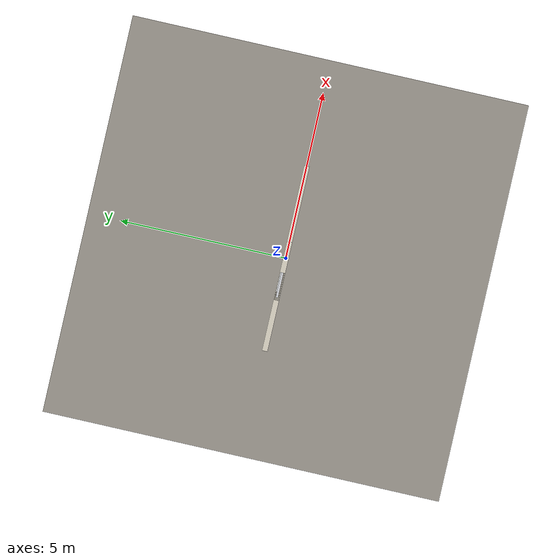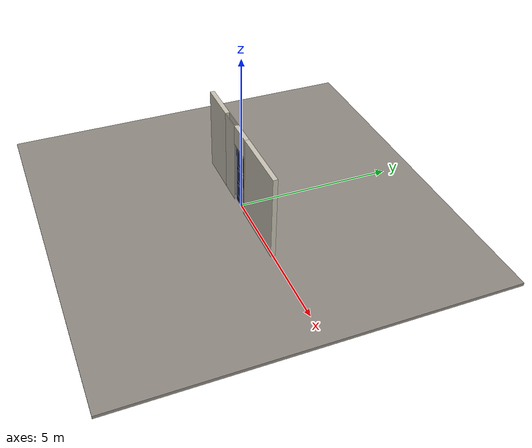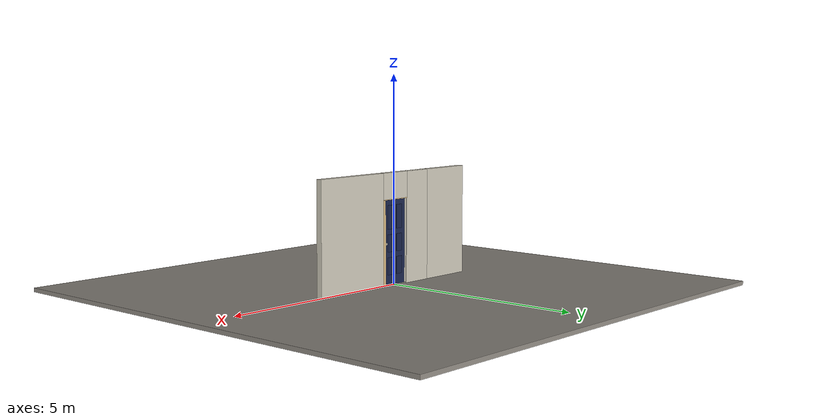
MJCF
<?xml version="1.0" ?>
<mujoco model="db0099_sliding_single_simple">
  <compiler angle="radian" meshdir="../../hardware" texturedir="../../textures" autolimits="true" inertiafromgeom="false"/>
  <option timestep="0.002" integrator="implicitfast" cone="elliptic" impratio="10" noslip_iterations="3">
    <flag multiccd="enable"/>
  </option>
  <size memory="16M"/>
  <default>
    <geom condim="4" solref="0.005 1" solimp="0.95 0.99 0.001"/>
    <joint solreflimit="0.005 1" solimplimit="0.95 0.99 0.001"/>
    <tendon solreflimit="0.005 1"/>
    <equality solref="0.002 1"/>
  </default>
  <visual>
    <headlight ambient="0.4 0.4 0.4" diffuse="0.7 0.7 0.7" specular="0.2 0.2 0.2"/>
    <quality shadowsize="4096"/>
    <map znear="0.01" zfar="60"/>
  </visual>
  <asset>
    <material name="mat_floor" rgba="0.55 0.53 0.5 1" specular="0.2" shininess="0.15" reflectance="0"/>
    <material name="mat_wall" rgba="0.78 0.76 0.7 1" specular="0.2" shininess="0.1" reflectance="0"/>
    <material name="mat_frame" rgba="0.82 0.7 0.5 1" specular="0.2" shininess="0.45" reflectance="0"/>
    <material name="mat_track" rgba="0.8 0.81 0.83 1" specular="0.8" shininess="0.6" reflectance="0.4"/>
    <material name="mat_leaf" rgba="0.09 0.13 0.28 1" specular="0.2" shininess="0.62" reflectance="0"/>
    <material name="mat_leaf_panel" rgba="0.083 0.12 0.258 1" specular="0.2" shininess="0.62" reflectance="0"/>
    <material name="mat_roller" rgba="0.65 0.66 0.68 1" specular="0.74" shininess="0.5" reflectance="0.36"/>
    <material name="mat_op_nickel_satin" rgba="0.72 0.7 0.66 1" specular="0.8" shininess="0.65" reflectance="0.4"/>
    <material name="mat_hook" rgba="0.75 0.76 0.77 1" specular="0.8" shininess="0.65" reflectance="0.4"/>
    <texture name="skybox" type="skybox" builtin="gradient" rgb1="0.6 0.7 0.85" rgb2="0.9 0.92 0.95" width="256" height="256"/>
  </asset>
  <worldbody>
    <light name="sun" pos="1.5 -2.5 4" dir="-0.3 0.5 -0.8" directional="true" diffuse="0.8 0.8 0.8" specular="0.3 0.3 0.3" castshadow="true"/>
    <light name="fill" pos="-1.5 2.5 3" dir="0.3 -0.5 -0.7" directional="true" diffuse="0.35 0.35 0.4" castshadow="false"/>
    <camera name="robot_view" pos="0 -2.54875 1.73965" xyaxes="1 0 0 0 0.26963 0.962964" fovy="52"/>
    <camera name="far_view" pos="0 2.54875 1.73965" xyaxes="-1 0 0 0 -0.26963 0.962964" fovy="52"/>
    <camera name="iso" pos="1.93705 -2.14095 2.14745" xyaxes="0.741536 0.670913 0 -0.242917 0.268487 0.932151" fovy="46"/>
    <camera name="detail_handle" pos="0.4455 -0.8175 1.28" xyaxes="0.97561 0.219512 0 -0.070934 0.315262 0.94635" fovy="38"/>
    <geom name="floor" type="box" size="6 6 0.05" pos="0 0 -0.05" material="mat_floor" group="0" contype="1" conaffinity="1" friction="0.8 0.005 0.0001" density="2400"/>
    <geom name="wall_right" type="box" size="1.02775 0.0725 1.35" pos="1.47225 0 1.35" material="mat_wall" group="0" contype="1" conaffinity="1" friction="0.6 0.005 0.0001" density="800"/>
    <geom name="wall_header" type="box" size="0.4145 0.0725 0.3145" pos="0.03 0 2.3855" material="mat_wall" group="0" contype="1" conaffinity="1" friction="0.6 0.005 0.0001" density="800"/>
    <geom name="pocket_skin_n" type="box" size="0.3805 0.008 1.35" pos="-0.746 -0.0645 1.35" material="mat_wall" group="0" contype="1" conaffinity="1" friction="0.6 0.005 0.0001" density="800"/>
    <geom name="pocket_skin_p" type="box" size="0.3805 0.008 1.35" pos="-0.746 0.0645 1.35" material="mat_wall" group="0" contype="1" conaffinity="1" friction="0.6 0.005 0.0001" density="800"/>
    <geom name="wall_pocket_far" type="box" size="0.68675 0.0725 1.35" pos="-1.81325 0 1.35" material="mat_wall" group="0" contype="1" conaffinity="1" friction="0.6 0.005 0.0001" density="800"/>
    <geom name="jamb_head" type="box" size="0.3845 0.0725 0.0095" pos="0 0 2.0615" material="mat_frame" group="0" contype="1" conaffinity="1" friction="0.6 0.005 0.0001" density="300"/>
    <geom name="track_header" type="box" size="0.743 0.025 0.04" pos="-0.3375 0 2.111" material="mat_track" group="0" contype="1" conaffinity="1" friction="0.6 0.005 0.0001" density="2700"/>
    <geom name="jamb_latch_0" type="box" size="0.0395 0.0725 1.026" pos="0.405 0 1.026" material="mat_frame" group="0" contype="1" conaffinity="1" friction="0.6 0.005 0.0001" density="300"/>
    <geom name="track_header_bracket" type="box" size="0.5944 0.01625 0.032" pos="-0.3375 0.04075 2.111" material="mat_hook" group="1" contype="0" conaffinity="0" density="7850"/>
    <site name="approach_point" pos="0 -1.5 0" quat="1 0 0 0" size="0.05" rgba="0.2 0.9 0.2 0.5" group="4"/>
    <site name="goal_point" pos="0 1.5 0" quat="1 0 0 0" size="0.05" rgba="0.2 0.9 0.2 0.5" group="4"/>
    <site name="door_plane_center" pos="0 0 1.026" quat="1 0 0 0" size="0.02" rgba="0.2 0.9 0.2 0.5" group="4"/>
    <body name="leaf" pos="0 0 0">
      <inertial pos="0.000048 0 1.028009" mass="33.380429" quat="0.500001 0.500001 0.499999 -0.499999" diaginertia="1.409699696 11.486563724 12.889441641"/>
      <joint name="leaf_slide" type="slide" axis="-1 0 0" limited="true" range="0 0.675" damping="3.669021" frictionloss="7.856404" armature="0.5"/>
      <geom name="leaf_slab" type="box" size="0.3555 0.0175 1.016" pos="0 0 1.028" material="mat_leaf" group="0" contype="1" conaffinity="1" friction="0.4 0.005 0.0001" density="1"/>
      <geom name="leaf_panel_0_n" type="box" size="0.09025 0.003 0.209032" pos="-0.15525 -0.0205 0.464552" material="mat_leaf_panel" group="1" contype="0" conaffinity="0" density="1"/>
      <geom name="leaf_panel_0_p" type="box" size="0.09025 0.003 0.209032" pos="-0.15525 0.0205 0.464552" material="mat_leaf_panel" group="1" contype="0" conaffinity="0" density="1"/>
      <geom name="leaf_panel_1_n" type="box" size="0.09025 0.003 0.209032" pos="0.15525 -0.0205 0.464552" material="mat_leaf_panel" group="1" contype="0" conaffinity="0" density="1"/>
      <geom name="leaf_panel_1_p" type="box" size="0.09025 0.003 0.209032" pos="0.15525 0.0205 0.464552" material="mat_leaf_panel" group="1" contype="0" conaffinity="0" density="1"/>
      <geom name="leaf_panel_2_n" type="box" size="0.09025 0.003 0.209032" pos="-0.15525 -0.0205 1.012616" material="mat_leaf_panel" group="1" contype="0" conaffinity="0" density="1"/>
      <geom name="leaf_panel_2_p" type="box" size="0.09025 0.003 0.209032" pos="-0.15525 0.0205 1.012616" material="mat_leaf_panel" group="1" contype="0" conaffinity="0" density="1"/>
      <geom name="leaf_panel_3_n" type="box" size="0.09025 0.003 0.209032" pos="0.15525 -0.0205 1.012616" material="mat_leaf_panel" group="1" contype="0" conaffinity="0" density="1"/>
      <geom name="leaf_panel_3_p" type="box" size="0.09025 0.003 0.209032" pos="0.15525 0.0205 1.012616" material="mat_leaf_panel" group="1" contype="0" conaffinity="0" density="1"/>
      <geom name="leaf_panel_4_n" type="box" size="0.09025 0.003 0.285376" pos="-0.15525 -0.0205 1.637024" material="mat_leaf_panel" group="1" contype="0" conaffinity="0" density="1"/>
      <geom name="leaf_panel_4_p" type="box" size="0.09025 0.003 0.285376" pos="-0.15525 0.0205 1.637024" material="mat_leaf_panel" group="1" contype="0" conaffinity="0" density="1"/>
      <geom name="leaf_panel_5_n" type="box" size="0.09025 0.003 0.285376" pos="0.15525 -0.0205 1.637024" material="mat_leaf_panel" group="1" contype="0" conaffinity="0" density="1"/>
      <geom name="leaf_panel_5_p" type="box" size="0.09025 0.003 0.285376" pos="0.15525 0.0205 1.637024" material="mat_leaf_panel" group="1" contype="0" conaffinity="0" density="1"/>
      <geom name="leaf_pull_n" type="box" size="0.0275 0.0005 0.0275" pos="0.2655 -0.018 1" material="mat_op_nickel_satin" group="1" contype="0" conaffinity="0" density="1000"/>
      <geom name="leaf_pull_p" type="box" size="0.0275 0.0005 0.0275" pos="0.2655 0.018 1" material="mat_op_nickel_satin" group="1" contype="0" conaffinity="0" density="1000"/>
      <site name="leaf_pull_grip_n" pos="0.2655 -0.0175 1" quat="1 0 0 0" size="0.012" rgba="0.2 0.9 0.2 0.5" group="4"/>
      <site name="leaf_pull_grip_p" pos="0.2655 0.0175 1" quat="1 0 0 0" size="0.012" rgba="0.2 0.9 0.2 0.5" group="4"/>
      <site name="leaf_edge_mid" pos="0.3555 0 1.028" quat="1 0 0 0" size="0.02" rgba="0.2 0.9 0.2 0.5" group="4"/>
    </body>
  </worldbody>
  <sensor>
    <jointpos name="leaf_slide_pos" joint="leaf_slide"/>
    <jointvel name="leaf_slide_vel" joint="leaf_slide"/>
  </sensor>
</mujoco>
